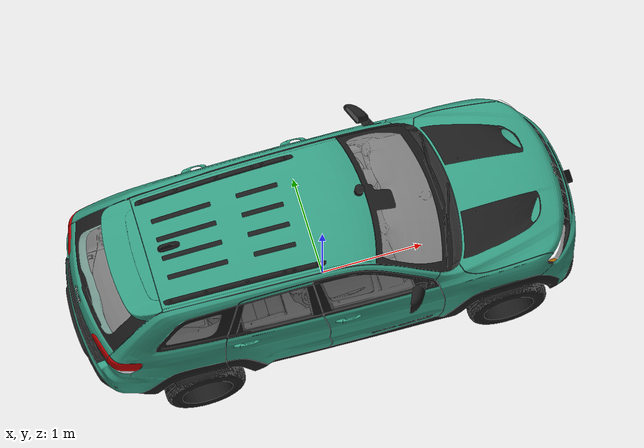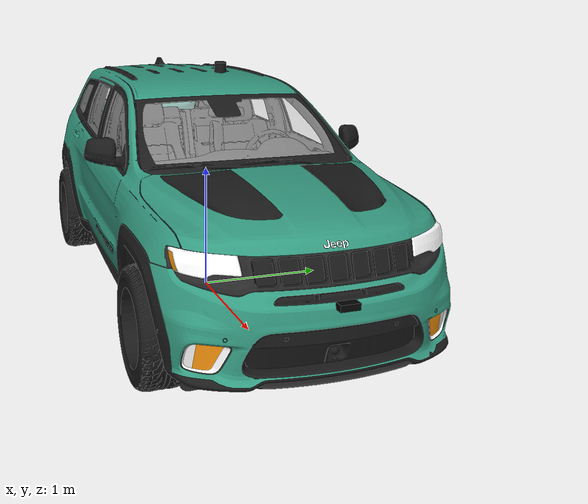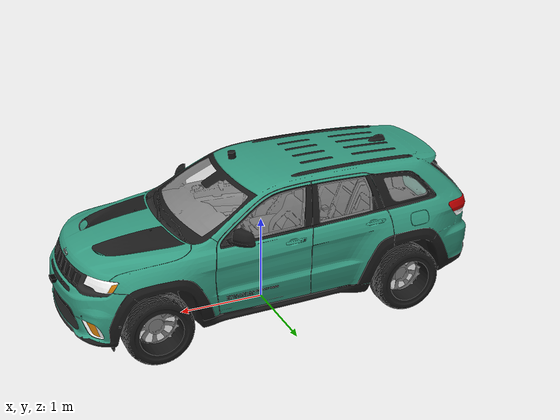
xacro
<?xml version="1.0"?>
<robot name="jeep" xmlns:xacro="http://www.ros.org/wiki/xacro">

  <!-- Starter simulation dimensions. Tune against hardware/CAD later. -->
  <xacro:property name="wheelbase" value="3.1"/>
  <xacro:property name="track_width_front" value="1.65"/>
  <xacro:property name="track_width_rear" value="1.65"/>
  <xacro:property name="wheel_radius" value="0.386"/>
  <xacro:property name="wheel_width" value="0.30"/>
  <xacro:property name="max_steering_angle" value="0.611"/>
  <xacro:property name="vehicle_mass" value="820"/>
  <xacro:property name="chassis_length" value="3.20"/>
  <xacro:property name="chassis_width" value="1.60"/>
  <xacro:property name="chassis_height" value="1.55"/>
  <xacro:property name="chassis_z" value="0.95"/>
  <xacro:property name="wheel_joint_z" value="${wheel_radius - chassis_z}"/>

  <!-- base_link stays near the ground-projected vehicle center. -->
  <link name="base_link">
    <inertial>
      <mass value="0.1"/>
      <origin xyz="0 0 0" rpy="0 0 0"/>
      <inertia ixx="0.001" ixy="0" ixz="0" iyy="0.001" iyz="0" izz="0.001"/>
    </inertial>
  </link>

  <joint name="base_to_chassis_joint" type="fixed">
    <parent link="base_link"/>
    <child link="chassis_link"/>
    <origin xyz="0 0 ${chassis_z}" rpy="0 0 0"/>
  </joint>

  <link name="chassis_link">
    <visual>
      <geometry>
        <mesh filename="$(find base_nav2_stack)/meshes/Jeep/Jeep_Chassis_Color.stl"/>
      </geometry>
      <material name="jeep_teal"><color rgba="0.2 0.6 0.5 1.0"/></material>
    </visual>
    <visual>
      <geometry>
        <mesh filename="$(find base_nav2_stack)/meshes/Jeep/Jeep_Chassis_Interior.stl"/>
      </geometry>
      <material name="jeep_interior_gray"><color rgba="0.15 0.15 0.15 1.0"/></material>
    </visual>
    <visual>
      <geometry>
        <mesh filename="$(find base_nav2_stack)/meshes/Jeep/Jeep_Windows.stl"/>
      </geometry>
      <material name="jeep_windows"><color rgba="0.8 0.8 0.8 0.6"/></material>
    </visual>
    <visual>
      <geometry>
        <mesh filename="$(find base_nav2_stack)/meshes/Jeep/Jeep_Chassis_Black.stl"/>
      </geometry>
      <material name="jeep_black"><color rgba="0.1 0.1 0.1 1.0"/></material>
    </visual>
    <visual>
      <geometry>
        <mesh filename="$(find base_nav2_stack)/meshes/Jeep/Jeep_Chassis_White.stl"/>
      </geometry>
      <material name="jeep_white"><color rgba="1.0 1.0 1.0 1.0"/></material>
    </visual>
    <visual>
      <geometry>
        <mesh filename="$(find base_nav2_stack)/meshes/Jeep/Jeep_Chassis_Red.stl"/>
      </geometry>
      <material name="jeep_red"><color rgba="0.8 0.0 0.0 1.0"/></material>
    </visual>
    <visual>
      <geometry>
        <mesh filename="$(find base_nav2_stack)/meshes/Jeep/Jeep_Chassis_Orange.stl"/>
      </geometry>
      <material name="jeep_orange"><color rgba="1.0 0.6 0.05 1.0"/></material>
    </visual>
    <collision>
      <origin xyz="0 0 0" rpy="0 0 0"/>
      <geometry>
        <mesh filename="$(find base_nav2_stack)/meshes/Jeep/Jeep_Body_Collision.stl"/>
      </geometry>
    </collision>
    <inertial>
      <origin xyz="0 0 0" rpy="0 0 0"/>
      <mass value="${vehicle_mass}"/>
      <inertia ixx="312.49" ixy="0" ixz="0" iyy="776.89" iyz="0" izz="720.91"/>
    </inertial>
  </link>

  <!-- Front Left Wheel + Knuckle -->
  <link name="front_left_knuckle">
    <inertial>
      <mass value="1"/>
      <origin xyz="0 0 0" rpy="0 0 0"/>
      <inertia ixx="0.0001" ixy="0" ixz="0" iyy="0.0001" iyz="0" izz="0.0001"/>
    </inertial>
  </link>
  <joint name="front_left_steer_joint" type="revolute">
    <parent link="chassis_link"/>
    <child link="front_left_knuckle"/>
    <origin xyz="${wheelbase/2} ${track_width_front/2} ${wheel_joint_z}" rpy="0 0 0"/>
    <axis xyz="0 0 1"/>
    <limit lower="${-max_steering_angle}" upper="${max_steering_angle}" effort="100" velocity="10"/>
    <dynamics damping="5.0" friction="0.0"/>
  </joint>

  <link name="front_left_wheel_link">
    <visual>
      <geometry><mesh filename="$(find base_nav2_stack)/meshes/Jeep/Jeep_Wheel_Black.stl"/></geometry>
      <material name="wheel_darkgray"><color rgba="0.1 0.1 0.1 1.0"/></material>
    </visual>
    <visual>
      <geometry><mesh filename="$(find base_nav2_stack)/meshes/Jeep/Jeep_Wheel_Gray.stl"/></geometry>
      <material name="wheel_gray"><color rgba="0.8 0.8 0.8 0.6"/></material>
    </visual>
    <collision>
      <origin xyz="0 0 0" rpy="1.5708 0 0"/>
      <geometry><cylinder length="${wheel_width}" radius="${wheel_radius}"/></geometry>
    </collision>
    <inertial>
      <mass value="20"/>
      <origin xyz="0 0 0" rpy="0 0 0"/>
      <inertia ixx="1.80" ixy="0" ixz="0" iyy="3.06" iyz="0" izz="1.80"/>
    </inertial>
  </link>
  <joint name="front_left_wheel_joint" type="continuous">
    <parent link="front_left_knuckle"/>
    <child link="front_left_wheel_link"/>
    <origin xyz="0 0 0" rpy="0 0 0"/>
    <axis xyz="0 1 0"/>
    <limit effort="400" velocity="50"/>
    <dynamics damping="1.0" friction="0.0"/>
  </joint>

  <!-- Front Right Wheel + Knuckle -->
  <link name="front_right_knuckle">
    <inertial>
      <mass value="1"/>
      <origin xyz="0 0 0" rpy="0 0 0"/>
      <inertia ixx="0.0001" ixy="0" ixz="0" iyy="0.0001" iyz="0" izz="0.0001"/>
    </inertial>
  </link>
  <joint name="front_right_steer_joint" type="revolute">
    <parent link="chassis_link"/>
    <child link="front_right_knuckle"/>
    <origin xyz="${wheelbase/2} ${-track_width_front/2} ${wheel_joint_z}" rpy="0 0 0"/>
    <axis xyz="0 0 1"/>
    <limit lower="${-max_steering_angle}" upper="${max_steering_angle}" effort="100" velocity="10"/>
    <dynamics damping="5.0" friction="0.0"/>
  </joint>

  <link name="front_right_wheel_link">
    <visual>
      <origin xyz="0 0 0" rpy="3.1415 0 0"/>
      <geometry><mesh filename="$(find base_nav2_stack)/meshes/Jeep/Jeep_Wheel_Black.stl"/></geometry>
      <material name="fr_wheel_darkgray"><color rgba="0.1 0.1 0.1 1.0"/></material>
    </visual>
    <visual>
      <origin xyz="0 0 0" rpy="3.1415 0 0"/>
      <geometry><mesh filename="$(find base_nav2_stack)/meshes/Jeep/Jeep_Wheel_Gray.stl"/></geometry>
      <material name="fr_wheel_gray"><color rgba="0.8 0.8 0.8 0.6"/></material>
    </visual>
    <collision>
      <origin xyz="0 0 0" rpy="1.5708 0 0"/>
      <geometry><cylinder length="${wheel_width}" radius="${wheel_radius}"/></geometry>
    </collision>
    <inertial>
      <mass value="20"/>
      <origin xyz="0 0 0" rpy="0 0 0"/>
      <inertia ixx="1.80" ixy="0" ixz="0" iyy="3.06" iyz="0" izz="1.80"/>
    </inertial>
  </link>
  <joint name="front_right_wheel_joint" type="continuous">
    <parent link="front_right_knuckle"/>
    <child link="front_right_wheel_link"/>
    <origin xyz="0 0 0" rpy="0 0 0"/>
    <axis xyz="0 1 0"/>
    <limit effort="400" velocity="50"/>
    <dynamics damping="1.0" friction="0.0"/>
  </joint>

  <!-- Rear wheels -->
  <link name="rear_left_wheel_link">
    <visual>
      <geometry><mesh filename="$(find base_nav2_stack)/meshes/Jeep/Jeep_Wheel_Black.stl"/></geometry>
      <material name="rl_wheel_darkgray"><color rgba="0.1 0.1 0.1 1.0"/></material>
    </visual>
    <visual>
      <geometry><mesh filename="$(find base_nav2_stack)/meshes/Jeep/Jeep_Wheel_Gray.stl"/></geometry>
      <material name="rl_wheel_gray"><color rgba="0.8 0.8 0.8 0.6"/></material>
    </visual>
    <collision>
      <origin xyz="0 0 0" rpy="1.5708 0 0"/>
      <geometry><cylinder length="${wheel_width}" radius="${wheel_radius}"/></geometry>
    </collision>
    <inertial>
      <mass value="20"/>
      <origin xyz="0 0 0" rpy="0 0 0"/>
      <inertia ixx="1.80" ixy="0" ixz="0" iyy="3.06" iyz="0" izz="1.80"/>
    </inertial>
  </link>
  <joint name="rear_left_wheel_joint" type="continuous">
    <parent link="chassis_link"/>
    <child link="rear_left_wheel_link"/>
    <origin xyz="${-wheelbase/2.2} ${track_width_rear/2} ${wheel_joint_z}" rpy="0 0 0"/>
    <axis xyz="0 1 0"/>
    <limit effort="400" velocity="50"/>
    <dynamics damping="1.0" friction="0.0"/>
  </joint>

  <link name="rear_right_wheel_link">
    <visual>
      <origin xyz="0 0 0" rpy="3.1415 0 0"/>
      <geometry><mesh filename="$(find base_nav2_stack)/meshes/Jeep/Jeep_Wheel_Black.stl"/></geometry>
      <material name="rr_wheel_darkgray"><color rgba="0.1 0.1 0.1 1.0"/></material>
    </visual>
    <visual>
      <origin xyz="0 0 0" rpy="3.1415 0 0"/>
      <geometry><mesh filename="$(find base_nav2_stack)/meshes/Jeep/Jeep_Wheel_Gray.stl"/></geometry>
      <material name="rr_wheel_gray"><color rgba="0.8 0.8 0.8 0.6"/></material>
    </visual>
    <collision>
      <origin xyz="0 0 0" rpy="1.5708 0 0"/>
      <geometry><cylinder length="${wheel_width}" radius="${wheel_radius}"/></geometry>
    </collision>
    <inertial>
      <mass value="20"/>
      <origin xyz="0 0 0" rpy="0 0 0"/>
      <inertia ixx="1.80" ixy="0" ixz="0" iyy="3.06" iyz="0" izz="1.80"/>
    </inertial>
  </link>
  <joint name="rear_right_wheel_joint" type="continuous">
    <parent link="chassis_link"/>
    <child link="rear_right_wheel_link"/>
    <origin xyz="${-wheelbase/2.2} ${-track_width_rear/2} ${wheel_joint_z}" rpy="0 0 0"/>
    <axis xyz="0 1 0"/>
    <limit effort="400" velocity="50"/>
    <dynamics damping="1.0" friction="0.0"/>
  </joint>

  <!-- Dummy steering wheel joint retained for plugin compatibility symmetry. -->
  <link name="steering_wheel_link">
    <inertial>
      <mass value="0.1"/>
      <origin xyz="0 0 0" rpy="0 0 0"/>
      <inertia ixx="0.001" ixy="0" ixz="0" iyy="0.001" iyz="0" izz="0.001"/>
    </inertial>
  </link>
  <joint name="steering_wheel_joint" type="revolute">
    <parent link="chassis_link"/>
    <child link="steering_wheel_link"/>
    <origin xyz="0.45 0.3 0.2" rpy="0 0 0"/>
    <axis xyz="0 0 1"/>
    <limit lower="${-max_steering_angle}" upper="${max_steering_angle}" effort="10" velocity="10"/>
    <dynamics damping="0.1" friction="0.0"/>
  </joint>

  <!-- Sensor mounting reference -->
  <link name="top_base_link"/>
  <joint name="top_link_joint" type="fixed">
    <origin xyz="0 0 ${chassis_height/2}" rpy="0 0 0"/>
    <parent link="chassis_link"/>
    <child link="top_base_link"/>
  </joint>

  <!-- Front RGB-D Camera Mount -->
  <xacro:property name="camera_x" value="2.43"/>
  <xacro:property name="camera_y" value="0.0"/>
  <xacro:property name="camera_z" value="-0.20"/>
  <link name="camera_link">
    <visual>
      <origin xyz="0 0 0" rpy="0 0 0"/>
      <geometry><box size="0.06 0.12 0.04"/></geometry>
      <material name="camera_black"><color rgba="0.01 0.01 0.01 1.0"/></material>
    </visual>
    <collision>
      <origin xyz="0 0 0" rpy="0 0 0"/>
      <geometry><box size="0.06 0.12 0.04"/></geometry>
    </collision>
    <inertial>
      <origin xyz="0 0 0" rpy="0 0 0"/>
      <mass value="0.10"/>
      <inertia ixx="0.0001" ixy="0.0" ixz="0.0" iyy="0.0001" iyz="0.0" izz="0.0001"/>
    </inertial>
  </link>
  <joint name="camera_joint" type="fixed">
    <parent link="chassis_link"/>
    <child link="camera_link"/>
    <origin xyz="${camera_x} ${camera_y} ${camera_z}" rpy="0 0 0"/>
  </joint>
  <link name="camera_optical_link"/>
  <joint name="camera_optical_joint" type="fixed">
    <parent link="camera_link"/>
    <child link="camera_optical_link"/>
    <origin xyz="0 0 0" rpy="-1.57079632679 0 -1.57079632679"/>
  </joint>

  <!-- Ouster LiDAR -->
  <link name="os_sensor">
    <visual>
      <origin xyz="0 0 0" rpy="0 0 0"/>
      <geometry><cylinder radius="0.0435" length="0.0735"/></geometry>
      <material name="os1_darkgray"><color rgba="0.1 0.1 0.1 1.0"/></material>
    </visual>
    <collision>
      <origin xyz="0 0 0" rpy="0 0 0"/>
      <geometry><cylinder radius="0.0435" length="0.0735"/></geometry>
    </collision>
    <inertial>
      <mass value="0.425"/>
      <inertia ixx="0.001" ixy="0" ixz="0" iyy="0.001" iyz="0" izz="0.001"/>
    </inertial>
  </link>
  <joint name="os_sensor_joint" type="fixed">
    <parent link="top_base_link"/>
    <child link="os_sensor"/>
    <origin xyz="0.35 0 0.12" rpy="0 0.127409 0"/>
  </joint>
  <link name="os_lidar_link"/>
  <joint name="os_lidar_joint" type="fixed">
    <parent link="os_sensor"/>
    <child link="os_lidar_link"/>
    <origin xyz="0 0 0" rpy="0 0 0"/>
  </joint>

  <!-- VectorNav mount, IMU, and GPS -->
  <link name="vectornav_mount_link">
    <visual>
      <origin xyz="0 0 0" rpy="0 0 0"/>
      <geometry><box size="0.08 0.08 0.02"/></geometry>
      <material name="vn_darkgray"><color rgba="0.1 0.1 0.1 1.0"/></material>
    </visual>
    <inertial>
      <mass value="0.1"/>
      <inertia ixx="0.001" ixy="0" ixz="0" iyy="0.001" iyz="0" izz="0.001"/>
    </inertial>
  </link>
  <joint name="vectornav_mount_joint" type="fixed">
    <parent link="chassis_link"/>
    <child link="vectornav_mount_link"/>
    <origin xyz="-0.8 0 0.05" rpy="0 0 0"/>
  </joint>
  <link name="imu_link">
    <visual>
      <origin xyz="0 0 0" rpy="0 0 0"/>
      <geometry><box size="0.05 0.05 0.02"/></geometry>
      <material name="imu_darkgray"><color rgba="0.1 0.1 0.1 1.0"/></material>
    </visual>
    <inertial>
      <mass value="0.05"/>
      <inertia ixx="0.0001" ixy="0" ixz="0" iyy="0.0001" iyz="0" izz="0.0001"/>
    </inertial>
  </link>
  <joint name="imu_joint" type="fixed">
    <parent link="vectornav_mount_link"/>
    <child link="imu_link"/>
    <origin xyz="0 0 0" rpy="0 0 0"/>
  </joint>
  <link name="gps_link">
    <visual>
      <origin xyz="0 0 0" rpy="0 0 0"/>
      <geometry><box size="0.06 0.06 0.01"/></geometry>
      <material name="gps_darkgray"><color rgba="0.1 0.1 0.1 1.0"/></material>
    </visual>
    <inertial>
      <mass value="0.05"/>
      <inertia ixx="0.0001" ixy="0" ixz="0" iyy="0.0001" iyz="0" izz="0.0001"/>
    </inertial>
  </link>
  <joint name="gps_joint" type="fixed">
    <parent link="chassis_link"/>
    <child link="gps_link"/>
    <origin xyz="0 0 0.25" rpy="0 0 0"/>
  </joint>

</robot>
